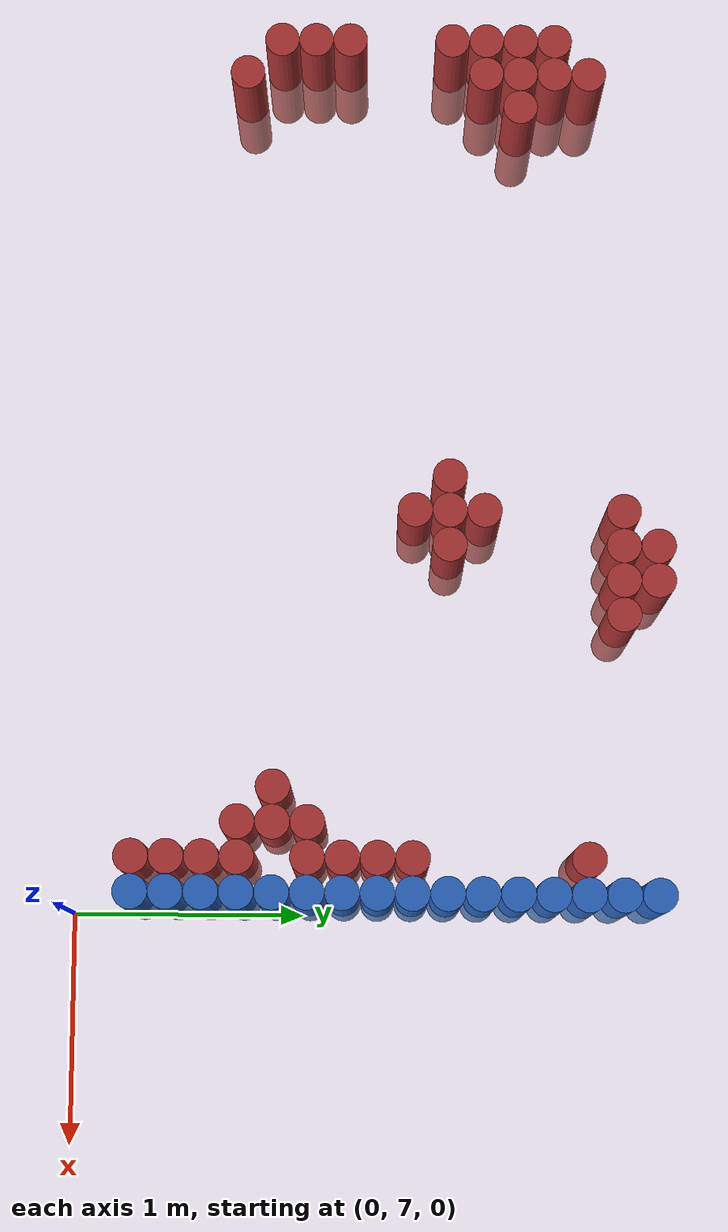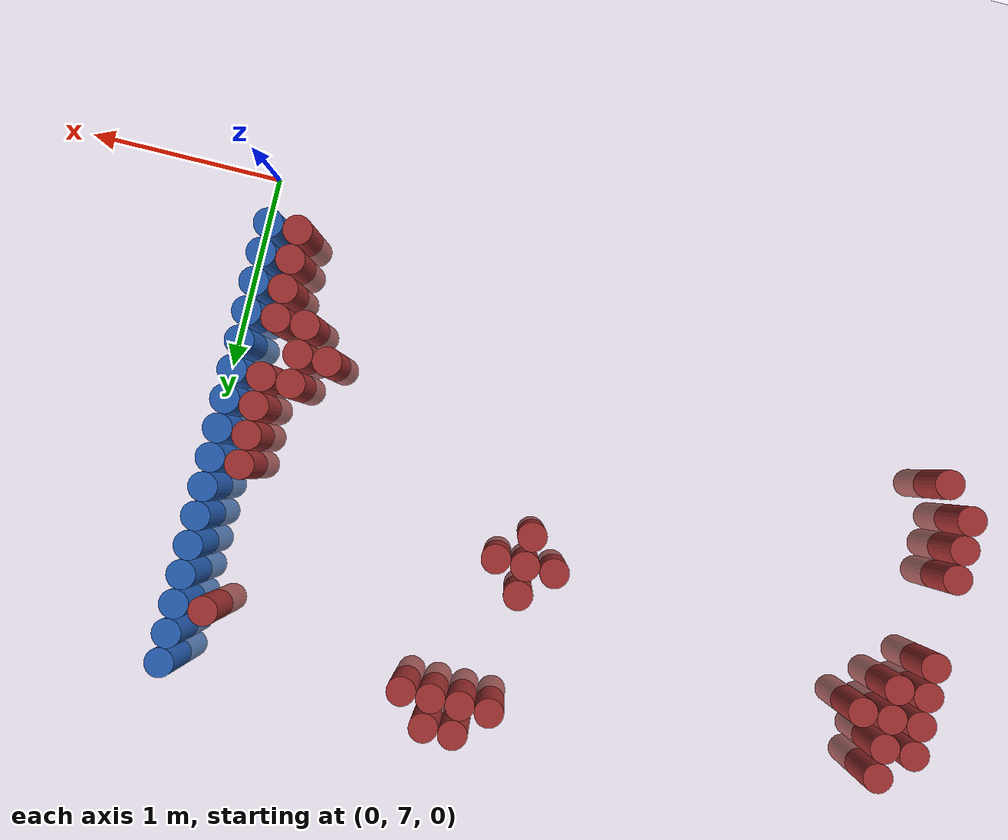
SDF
<sdf version="1.6">
 <world name="default">
  <model name="ground_plane">
   <static>1</static>
   <link name="link">
    <collision name="collision">
     <geometry><plane><normal>0 0 1</normal><size>100 100</size></plane></geometry>
     <surface><friction><ode><mu>100</mu><mu2>50</mu2></ode></friction></surface>
    </collision>
    <visual name="visual">
     <cast_shadows>0</cast_shadows>
     <geometry><plane><normal>0 0 1</normal><size>100 100</size></plane></geometry>
     <material>
      <script><uri>file://media/materials/scripts/gazebo.material</uri><name>Gazebo/Grey</name></script>
     </material>
    </visual>
   </link>
  </model>
  <model name="unit_cylinder_151">
   <static>1</static>
   <pose>-3.825000 7.875000 0.000000 0.000000 0.000000 0.000000</pose>
   <link name="link">
    <inertial>
     <mass>1</mass>
     <inertia><ixx>0.145833</ixx><ixy>0</ixy><ixz>0</ixz><iyy>0.145833</iyy><iyz>0</iyz><izz>0.125</izz></inertia>
    </inertial>
    <collision name="collision">
     <geometry><cylinder><radius>0.075000</radius><length>1</length></cylinder></geometry>
    </collision>
    <visual name="visual">
     <geometry><cylinder><radius>0.075000</radius><length>1</length></cylinder></geometry>
     <material>
      <ambient>0.648000 0.192000 0.192000 1</ambient>
      <diffuse>0.648000 0.192000 0.192000 1</diffuse>
     </material>
     <material>
      <script><name>Gazebo/Grey</name><uri>file://media/materials/scripts/gazebo.material</uri></script>
     </material>
    </visual>
   </link>
  </model>
  <model name="unit_cylinder_152">
   <static>1</static>
   <pose>-3.825000 8.025000 0.000000 0.000000 0.000000 0.000000</pose>
   <link name="link">
    <inertial>
     <mass>1</mass>
     <inertia><ixx>0.145833</ixx><ixy>0</ixy><ixz>0</ixz><iyy>0.145833</iyy><iyz>0</iyz><izz>0.125</izz></inertia>
    </inertial>
    <collision name="collision">
     <geometry><cylinder><radius>0.075000</radius><length>1</length></cylinder></geometry>
    </collision>
    <visual name="visual">
     <geometry><cylinder><radius>0.075000</radius><length>1</length></cylinder></geometry>
     <material>
      <ambient>0.648000 0.192000 0.192000 1</ambient>
      <diffuse>0.648000 0.192000 0.192000 1</diffuse>
     </material>
     <material>
      <script><name>Gazebo/Grey</name><uri>file://media/materials/scripts/gazebo.material</uri></script>
     </material>
    </visual>
   </link>
  </model>
  <model name="unit_cylinder_153">
   <static>1</static>
   <pose>-3.825000 8.175000 0.000000 0.000000 0.000000 0.000000</pose>
   <link name="link">
    <inertial>
     <mass>1</mass>
     <inertia><ixx>0.145833</ixx><ixy>0</ixy><ixz>0</ixz><iyy>0.145833</iyy><iyz>0</iyz><izz>0.125</izz></inertia>
    </inertial>
    <collision name="collision">
     <geometry><cylinder><radius>0.075000</radius><length>1</length></cylinder></geometry>
    </collision>
    <visual name="visual">
     <geometry><cylinder><radius>0.075000</radius><length>1</length></cylinder></geometry>
     <material>
      <ambient>0.648000 0.192000 0.192000 1</ambient>
      <diffuse>0.648000 0.192000 0.192000 1</diffuse>
     </material>
     <material>
      <script><name>Gazebo/Grey</name><uri>file://media/materials/scripts/gazebo.material</uri></script>
     </material>
    </visual>
   </link>
  </model>
  <model name="unit_cylinder_154">
   <static>1</static>
   <pose>-3.825000 8.625000 0.000000 0.000000 0.000000 0.000000</pose>
   <link name="link">
    <inertial>
     <mass>1</mass>
     <inertia><ixx>0.145833</ixx><ixy>0</ixy><ixz>0</ixz><iyy>0.145833</iyy><iyz>0</iyz><izz>0.125</izz></inertia>
    </inertial>
    <collision name="collision">
     <geometry><cylinder><radius>0.075000</radius><length>1</length></cylinder></geometry>
    </collision>
    <visual name="visual">
     <geometry><cylinder><radius>0.075000</radius><length>1</length></cylinder></geometry>
     <material>
      <ambient>0.648000 0.192000 0.192000 1</ambient>
      <diffuse>0.648000 0.192000 0.192000 1</diffuse>
     </material>
     <material>
      <script><name>Gazebo/Grey</name><uri>file://media/materials/scripts/gazebo.material</uri></script>
     </material>
    </visual>
   </link>
  </model>
  <model name="unit_cylinder_155">
   <static>1</static>
   <pose>-3.825000 8.775000 0.000000 0.000000 0.000000 0.000000</pose>
   <link name="link">
    <inertial>
     <mass>1</mass>
     <inertia><ixx>0.145833</ixx><ixy>0</ixy><ixz>0</ixz><iyy>0.145833</iyy><iyz>0</iyz><izz>0.125</izz></inertia>
    </inertial>
    <collision name="collision">
     <geometry><cylinder><radius>0.075000</radius><length>1</length></cylinder></geometry>
    </collision>
    <visual name="visual">
     <geometry><cylinder><radius>0.075000</radius><length>1</length></cylinder></geometry>
     <material>
      <ambient>0.648000 0.192000 0.192000 1</ambient>
      <diffuse>0.648000 0.192000 0.192000 1</diffuse>
     </material>
     <material>
      <script><name>Gazebo/Grey</name><uri>file://media/materials/scripts/gazebo.material</uri></script>
     </material>
    </visual>
   </link>
  </model>
  <model name="unit_cylinder_156">
   <static>1</static>
   <pose>-3.825000 8.925000 0.000000 0.000000 0.000000 0.000000</pose>
   <link name="link">
    <inertial>
     <mass>1</mass>
     <inertia><ixx>0.145833</ixx><ixy>0</ixy><ixz>0</ixz><iyy>0.145833</iyy><iyz>0</iyz><izz>0.125</izz></inertia>
    </inertial>
    <collision name="collision">
     <geometry><cylinder><radius>0.075000</radius><length>1</length></cylinder></geometry>
    </collision>
    <visual name="visual">
     <geometry><cylinder><radius>0.075000</radius><length>1</length></cylinder></geometry>
     <material>
      <ambient>0.648000 0.192000 0.192000 1</ambient>
      <diffuse>0.648000 0.192000 0.192000 1</diffuse>
     </material>
     <material>
      <script><name>Gazebo/Grey</name><uri>file://media/materials/scripts/gazebo.material</uri></script>
     </material>
    </visual>
   </link>
  </model>
  <model name="unit_cylinder_157">
   <static>1</static>
   <pose>-3.825000 9.075000 0.000000 0.000000 0.000000 0.000000</pose>
   <link name="link">
    <inertial>
     <mass>1</mass>
     <inertia><ixx>0.145833</ixx><ixy>0</ixy><ixz>0</ixz><iyy>0.145833</iyy><iyz>0</iyz><izz>0.125</izz></inertia>
    </inertial>
    <collision name="collision">
     <geometry><cylinder><radius>0.075000</radius><length>1</length></cylinder></geometry>
    </collision>
    <visual name="visual">
     <geometry><cylinder><radius>0.075000</radius><length>1</length></cylinder></geometry>
     <material>
      <ambient>0.648000 0.192000 0.192000 1</ambient>
      <diffuse>0.648000 0.192000 0.192000 1</diffuse>
     </material>
     <material>
      <script><name>Gazebo/Grey</name><uri>file://media/materials/scripts/gazebo.material</uri></script>
     </material>
    </visual>
   </link>
  </model>
  <model name="unit_cylinder_158">
   <static>1</static>
   <pose>-3.675000 7.725000 0.000000 0.000000 0.000000 0.000000</pose>
   <link name="link">
    <inertial>
     <mass>1</mass>
     <inertia><ixx>0.145833</ixx><ixy>0</ixy><ixz>0</ixz><iyy>0.145833</iyy><iyz>0</iyz><izz>0.125</izz></inertia>
    </inertial>
    <collision name="collision">
     <geometry><cylinder><radius>0.075000</radius><length>1</length></cylinder></geometry>
    </collision>
    <visual name="visual">
     <geometry><cylinder><radius>0.075000</radius><length>1</length></cylinder></geometry>
     <material>
      <ambient>0.648000 0.192000 0.192000 1</ambient>
      <diffuse>0.648000 0.192000 0.192000 1</diffuse>
     </material>
     <material>
      <script><name>Gazebo/Grey</name><uri>file://media/materials/scripts/gazebo.material</uri></script>
     </material>
    </visual>
   </link>
  </model>
  <model name="unit_cylinder_159">
   <static>1</static>
   <pose>-3.675000 8.775000 0.000000 0.000000 0.000000 0.000000</pose>
   <link name="link">
    <inertial>
     <mass>1</mass>
     <inertia><ixx>0.145833</ixx><ixy>0</ixy><ixz>0</ixz><iyy>0.145833</iyy><iyz>0</iyz><izz>0.125</izz></inertia>
    </inertial>
    <collision name="collision">
     <geometry><cylinder><radius>0.075000</radius><length>1</length></cylinder></geometry>
    </collision>
    <visual name="visual">
     <geometry><cylinder><radius>0.075000</radius><length>1</length></cylinder></geometry>
     <material>
      <ambient>0.648000 0.192000 0.192000 1</ambient>
      <diffuse>0.648000 0.192000 0.192000 1</diffuse>
     </material>
     <material>
      <script><name>Gazebo/Grey</name><uri>file://media/materials/scripts/gazebo.material</uri></script>
     </material>
    </visual>
   </link>
  </model>
  <model name="unit_cylinder_160">
   <static>1</static>
   <pose>-3.675000 8.925000 0.000000 0.000000 0.000000 0.000000</pose>
   <link name="link">
    <inertial>
     <mass>1</mass>
     <inertia><ixx>0.145833</ixx><ixy>0</ixy><ixz>0</ixz><iyy>0.145833</iyy><iyz>0</iyz><izz>0.125</izz></inertia>
    </inertial>
    <collision name="collision">
     <geometry><cylinder><radius>0.075000</radius><length>1</length></cylinder></geometry>
    </collision>
    <visual name="visual">
     <geometry><cylinder><radius>0.075000</radius><length>1</length></cylinder></geometry>
     <material>
      <ambient>0.648000 0.192000 0.192000 1</ambient>
      <diffuse>0.648000 0.192000 0.192000 1</diffuse>
     </material>
     <material>
      <script><name>Gazebo/Grey</name><uri>file://media/materials/scripts/gazebo.material</uri></script>
     </material>
    </visual>
   </link>
  </model>
  <model name="unit_cylinder_161">
   <static>1</static>
   <pose>-3.675000 9.075000 0.000000 0.000000 0.000000 0.000000</pose>
   <link name="link">
    <inertial>
     <mass>1</mass>
     <inertia><ixx>0.145833</ixx><ixy>0</ixy><ixz>0</ixz><iyy>0.145833</iyy><iyz>0</iyz><izz>0.125</izz></inertia>
    </inertial>
    <collision name="collision">
     <geometry><cylinder><radius>0.075000</radius><length>1</length></cylinder></geometry>
    </collision>
    <visual name="visual">
     <geometry><cylinder><radius>0.075000</radius><length>1</length></cylinder></geometry>
     <material>
      <ambient>0.648000 0.192000 0.192000 1</ambient>
      <diffuse>0.648000 0.192000 0.192000 1</diffuse>
     </material>
     <material>
      <script><name>Gazebo/Grey</name><uri>file://media/materials/scripts/gazebo.material</uri></script>
     </material>
    </visual>
   </link>
  </model>
  <model name="unit_cylinder_162">
   <static>1</static>
   <pose>-3.675000 9.225000 0.000000 0.000000 0.000000 0.000000</pose>
   <link name="link">
    <inertial>
     <mass>1</mass>
     <inertia><ixx>0.145833</ixx><ixy>0</ixy><ixz>0</ixz><iyy>0.145833</iyy><iyz>0</iyz><izz>0.125</izz></inertia>
    </inertial>
    <collision name="collision">
     <geometry><cylinder><radius>0.075000</radius><length>1</length></cylinder></geometry>
    </collision>
    <visual name="visual">
     <geometry><cylinder><radius>0.075000</radius><length>1</length></cylinder></geometry>
     <material>
      <ambient>0.648000 0.192000 0.192000 1</ambient>
      <diffuse>0.648000 0.192000 0.192000 1</diffuse>
     </material>
     <material>
      <script><name>Gazebo/Grey</name><uri>file://media/materials/scripts/gazebo.material</uri></script>
     </material>
    </visual>
   </link>
  </model>
  <model name="unit_cylinder_163">
   <static>1</static>
   <pose>-3.525000 8.925000 0.000000 0.000000 0.000000 0.000000</pose>
   <link name="link">
    <inertial>
     <mass>1</mass>
     <inertia><ixx>0.145833</ixx><ixy>0</ixy><ixz>0</ixz><iyy>0.145833</iyy><iyz>0</iyz><izz>0.125</izz></inertia>
    </inertial>
    <collision name="collision">
     <geometry><cylinder><radius>0.075000</radius><length>1</length></cylinder></geometry>
    </collision>
    <visual name="visual">
     <geometry><cylinder><radius>0.075000</radius><length>1</length></cylinder></geometry>
     <material>
      <ambient>0.648000 0.192000 0.192000 1</ambient>
      <diffuse>0.648000 0.192000 0.192000 1</diffuse>
     </material>
     <material>
      <script><name>Gazebo/Grey</name><uri>file://media/materials/scripts/gazebo.material</uri></script>
     </material>
    </visual>
   </link>
  </model>
  <model name="unit_cylinder_183">
   <static>1</static>
   <pose>-1.875000 8.625000 0.000000 0.000000 0.000000 0.000000</pose>
   <link name="link">
    <inertial>
     <mass>1</mass>
     <inertia><ixx>0.145833</ixx><ixy>0</ixy><ixz>0</ixz><iyy>0.145833</iyy><iyz>0</iyz><izz>0.125</izz></inertia>
    </inertial>
    <collision name="collision">
     <geometry><cylinder><radius>0.075000</radius><length>1</length></cylinder></geometry>
    </collision>
    <visual name="visual">
     <geometry><cylinder><radius>0.075000</radius><length>1</length></cylinder></geometry>
     <material>
      <ambient>0.648000 0.192000 0.192000 1</ambient>
      <diffuse>0.648000 0.192000 0.192000 1</diffuse>
     </material>
     <material>
      <script><name>Gazebo/Grey</name><uri>file://media/materials/scripts/gazebo.material</uri></script>
     </material>
    </visual>
   </link>
  </model>
  <model name="unit_cylinder_185">
   <static>1</static>
   <pose>-1.725000 8.475000 0.000000 0.000000 0.000000 0.000000</pose>
   <link name="link">
    <inertial>
     <mass>1</mass>
     <inertia><ixx>0.145833</ixx><ixy>0</ixy><ixz>0</ixz><iyy>0.145833</iyy><iyz>0</iyz><izz>0.125</izz></inertia>
    </inertial>
    <collision name="collision">
     <geometry><cylinder><radius>0.075000</radius><length>1</length></cylinder></geometry>
    </collision>
    <visual name="visual">
     <geometry><cylinder><radius>0.075000</radius><length>1</length></cylinder></geometry>
     <material>
      <ambient>0.648000 0.192000 0.192000 1</ambient>
      <diffuse>0.648000 0.192000 0.192000 1</diffuse>
     </material>
     <material>
      <script><name>Gazebo/Grey</name><uri>file://media/materials/scripts/gazebo.material</uri></script>
     </material>
    </visual>
   </link>
  </model>
  <model name="unit_cylinder_186">
   <static>1</static>
   <pose>-1.725000 8.625000 0.000000 0.000000 0.000000 0.000000</pose>
   <link name="link">
    <inertial>
     <mass>1</mass>
     <inertia><ixx>0.145833</ixx><ixy>0</ixy><ixz>0</ixz><iyy>0.145833</iyy><iyz>0</iyz><izz>0.125</izz></inertia>
    </inertial>
    <collision name="collision">
     <geometry><cylinder><radius>0.075000</radius><length>1</length></cylinder></geometry>
    </collision>
    <visual name="visual">
     <geometry><cylinder><radius>0.075000</radius><length>1</length></cylinder></geometry>
     <material>
      <ambient>0.648000 0.192000 0.192000 1</ambient>
      <diffuse>0.648000 0.192000 0.192000 1</diffuse>
     </material>
     <material>
      <script><name>Gazebo/Grey</name><uri>file://media/materials/scripts/gazebo.material</uri></script>
     </material>
    </visual>
   </link>
  </model>
  <model name="unit_cylinder_187">
   <static>1</static>
   <pose>-1.725000 8.775000 0.000000 0.000000 0.000000 0.000000</pose>
   <link name="link">
    <inertial>
     <mass>1</mass>
     <inertia><ixx>0.145833</ixx><ixy>0</ixy><ixz>0</ixz><iyy>0.145833</iyy><iyz>0</iyz><izz>0.125</izz></inertia>
    </inertial>
    <collision name="collision">
     <geometry><cylinder><radius>0.075000</radius><length>1</length></cylinder></geometry>
    </collision>
    <visual name="visual">
     <geometry><cylinder><radius>0.075000</radius><length>1</length></cylinder></geometry>
     <material>
      <ambient>0.648000 0.192000 0.192000 1</ambient>
      <diffuse>0.648000 0.192000 0.192000 1</diffuse>
     </material>
     <material>
      <script><name>Gazebo/Grey</name><uri>file://media/materials/scripts/gazebo.material</uri></script>
     </material>
    </visual>
   </link>
  </model>
  <model name="unit_cylinder_188">
   <static>1</static>
   <pose>-1.725000 9.375000 0.000000 0.000000 0.000000 0.000000</pose>
   <link name="link">
    <inertial>
     <mass>1</mass>
     <inertia><ixx>0.145833</ixx><ixy>0</ixy><ixz>0</ixz><iyy>0.145833</iyy><iyz>0</iyz><izz>0.125</izz></inertia>
    </inertial>
    <collision name="collision">
     <geometry><cylinder><radius>0.075000</radius><length>1</length></cylinder></geometry>
    </collision>
    <visual name="visual">
     <geometry><cylinder><radius>0.075000</radius><length>1</length></cylinder></geometry>
     <material>
      <ambient>0.648000 0.192000 0.192000 1</ambient>
      <diffuse>0.648000 0.192000 0.192000 1</diffuse>
     </material>
     <material>
      <script><name>Gazebo/Grey</name><uri>file://media/materials/scripts/gazebo.material</uri></script>
     </material>
    </visual>
   </link>
  </model>
  <model name="unit_cylinder_190">
   <static>1</static>
   <pose>-1.575000 8.625000 0.000000 0.000000 0.000000 0.000000</pose>
   <link name="link">
    <inertial>
     <mass>1</mass>
     <inertia><ixx>0.145833</ixx><ixy>0</ixy><ixz>0</ixz><iyy>0.145833</iyy><iyz>0</iyz><izz>0.125</izz></inertia>
    </inertial>
    <collision name="collision">
     <geometry><cylinder><radius>0.075000</radius><length>1</length></cylinder></geometry>
    </collision>
    <visual name="visual">
     <geometry><cylinder><radius>0.075000</radius><length>1</length></cylinder></geometry>
     <material>
      <ambient>0.648000 0.192000 0.192000 1</ambient>
      <diffuse>0.648000 0.192000 0.192000 1</diffuse>
     </material>
     <material>
      <script><name>Gazebo/Grey</name><uri>file://media/materials/scripts/gazebo.material</uri></script>
     </material>
    </visual>
   </link>
  </model>
  <model name="unit_cylinder_191">
   <static>1</static>
   <pose>-1.575000 9.375000 0.000000 0.000000 0.000000 0.000000</pose>
   <link name="link">
    <inertial>
     <mass>1</mass>
     <inertia><ixx>0.145833</ixx><ixy>0</ixy><ixz>0</ixz><iyy>0.145833</iyy><iyz>0</iyz><izz>0.125</izz></inertia>
    </inertial>
    <collision name="collision">
     <geometry><cylinder><radius>0.075000</radius><length>1</length></cylinder></geometry>
    </collision>
    <visual name="visual">
     <geometry><cylinder><radius>0.075000</radius><length>1</length></cylinder></geometry>
     <material>
      <ambient>0.648000 0.192000 0.192000 1</ambient>
      <diffuse>0.648000 0.192000 0.192000 1</diffuse>
     </material>
     <material>
      <script><name>Gazebo/Grey</name><uri>file://media/materials/scripts/gazebo.material</uri></script>
     </material>
    </visual>
   </link>
  </model>
  <model name="unit_cylinder_192">
   <static>1</static>
   <pose>-1.575000 9.525000 0.000000 0.000000 0.000000 0.000000</pose>
   <link name="link">
    <inertial>
     <mass>1</mass>
     <inertia><ixx>0.145833</ixx><ixy>0</ixy><ixz>0</ixz><iyy>0.145833</iyy><iyz>0</iyz><izz>0.125</izz></inertia>
    </inertial>
    <collision name="collision">
     <geometry><cylinder><radius>0.075000</radius><length>1</length></cylinder></geometry>
    </collision>
    <visual name="visual">
     <geometry><cylinder><radius>0.075000</radius><length>1</length></cylinder></geometry>
     <material>
      <ambient>0.648000 0.192000 0.192000 1</ambient>
      <diffuse>0.648000 0.192000 0.192000 1</diffuse>
     </material>
     <material>
      <script><name>Gazebo/Grey</name><uri>file://media/materials/scripts/gazebo.material</uri></script>
     </material>
    </visual>
   </link>
  </model>
  <model name="unit_cylinder_196">
   <static>1</static>
   <pose>-1.425000 9.375000 0.000000 0.000000 0.000000 0.000000</pose>
   <link name="link">
    <inertial>
     <mass>1</mass>
     <inertia><ixx>0.145833</ixx><ixy>0</ixy><ixz>0</ixz><iyy>0.145833</iyy><iyz>0</iyz><izz>0.125</izz></inertia>
    </inertial>
    <collision name="collision">
     <geometry><cylinder><radius>0.075000</radius><length>1</length></cylinder></geometry>
    </collision>
    <visual name="visual">
     <geometry><cylinder><radius>0.075000</radius><length>1</length></cylinder></geometry>
     <material>
      <ambient>0.648000 0.192000 0.192000 1</ambient>
      <diffuse>0.648000 0.192000 0.192000 1</diffuse>
     </material>
     <material>
      <script><name>Gazebo/Grey</name><uri>file://media/materials/scripts/gazebo.material</uri></script>
     </material>
    </visual>
   </link>
  </model>
  <model name="unit_cylinder_197">
   <static>1</static>
   <pose>-1.425000 9.525000 0.000000 0.000000 0.000000 0.000000</pose>
   <link name="link">
    <inertial>
     <mass>1</mass>
     <inertia><ixx>0.145833</ixx><ixy>0</ixy><ixz>0</ixz><iyy>0.145833</iyy><iyz>0</iyz><izz>0.125</izz></inertia>
    </inertial>
    <collision name="collision">
     <geometry><cylinder><radius>0.075000</radius><length>1</length></cylinder></geometry>
    </collision>
    <visual name="visual">
     <geometry><cylinder><radius>0.075000</radius><length>1</length></cylinder></geometry>
     <material>
      <ambient>0.648000 0.192000 0.192000 1</ambient>
      <diffuse>0.648000 0.192000 0.192000 1</diffuse>
     </material>
     <material>
      <script><name>Gazebo/Grey</name><uri>file://media/materials/scripts/gazebo.material</uri></script>
     </material>
    </visual>
   </link>
  </model>
  <model name="unit_cylinder_203">
   <static>1</static>
   <pose>-1.275000 9.375000 0.000000 0.000000 0.000000 0.000000</pose>
   <link name="link">
    <inertial>
     <mass>1</mass>
     <inertia><ixx>0.145833</ixx><ixy>0</ixy><ixz>0</ixz><iyy>0.145833</iyy><iyz>0</iyz><izz>0.125</izz></inertia>
    </inertial>
    <collision name="collision">
     <geometry><cylinder><radius>0.075000</radius><length>1</length></cylinder></geometry>
    </collision>
    <visual name="visual">
     <geometry><cylinder><radius>0.075000</radius><length>1</length></cylinder></geometry>
     <material>
      <ambient>0.648000 0.192000 0.192000 1</ambient>
      <diffuse>0.648000 0.192000 0.192000 1</diffuse>
     </material>
     <material>
      <script><name>Gazebo/Grey</name><uri>file://media/materials/scripts/gazebo.material</uri></script>
     </material>
    </visual>
   </link>
  </model>
  <model name="unit_cylinder_215">
   <static>1</static>
   <pose>-0.525000 7.875000 0.000000 0.000000 0.000000 0.000000</pose>
   <link name="link">
    <inertial>
     <mass>1</mass>
     <inertia><ixx>0.145833</ixx><ixy>0</ixy><ixz>0</ixz><iyy>0.145833</iyy><iyz>0</iyz><izz>0.125</izz></inertia>
    </inertial>
    <collision name="collision">
     <geometry><cylinder><radius>0.075000</radius><length>1</length></cylinder></geometry>
    </collision>
    <visual name="visual">
     <geometry><cylinder><radius>0.075000</radius><length>1</length></cylinder></geometry>
     <material>
      <ambient>0.648000 0.192000 0.192000 1</ambient>
      <diffuse>0.648000 0.192000 0.192000 1</diffuse>
     </material>
     <material>
      <script><name>Gazebo/Grey</name><uri>file://media/materials/scripts/gazebo.material</uri></script>
     </material>
    </visual>
   </link>
  </model>
  <model name="unit_cylinder_217">
   <static>1</static>
   <pose>-0.375000 7.725000 0.000000 0.000000 0.000000 0.000000</pose>
   <link name="link">
    <inertial>
     <mass>1</mass>
     <inertia><ixx>0.145833</ixx><ixy>0</ixy><ixz>0</ixz><iyy>0.145833</iyy><iyz>0</iyz><izz>0.125</izz></inertia>
    </inertial>
    <collision name="collision">
     <geometry><cylinder><radius>0.075000</radius><length>1</length></cylinder></geometry>
    </collision>
    <visual name="visual">
     <geometry><cylinder><radius>0.075000</radius><length>1</length></cylinder></geometry>
     <material>
      <ambient>0.648000 0.192000 0.192000 1</ambient>
      <diffuse>0.648000 0.192000 0.192000 1</diffuse>
     </material>
     <material>
      <script><name>Gazebo/Grey</name><uri>file://media/materials/scripts/gazebo.material</uri></script>
     </material>
    </visual>
   </link>
  </model>
  <model name="unit_cylinder_218">
   <static>1</static>
   <pose>-0.375000 7.875000 0.000000 0.000000 0.000000 0.000000</pose>
   <link name="link">
    <inertial>
     <mass>1</mass>
     <inertia><ixx>0.145833</ixx><ixy>0</ixy><ixz>0</ixz><iyy>0.145833</iyy><iyz>0</iyz><izz>0.125</izz></inertia>
    </inertial>
    <collision name="collision">
     <geometry><cylinder><radius>0.075000</radius><length>1</length></cylinder></geometry>
    </collision>
    <visual name="visual">
     <geometry><cylinder><radius>0.075000</radius><length>1</length></cylinder></geometry>
     <material>
      <ambient>0.648000 0.192000 0.192000 1</ambient>
      <diffuse>0.648000 0.192000 0.192000 1</diffuse>
     </material>
     <material>
      <script><name>Gazebo/Grey</name><uri>file://media/materials/scripts/gazebo.material</uri></script>
     </material>
    </visual>
   </link>
  </model>
  <model name="unit_cylinder_219">
   <static>1</static>
   <pose>-0.375000 8.025000 0.000000 0.000000 0.000000 0.000000</pose>
   <link name="link">
    <inertial>
     <mass>1</mass>
     <inertia><ixx>0.145833</ixx><ixy>0</ixy><ixz>0</ixz><iyy>0.145833</iyy><iyz>0</iyz><izz>0.125</izz></inertia>
    </inertial>
    <collision name="collision">
     <geometry><cylinder><radius>0.075000</radius><length>1</length></cylinder></geometry>
    </collision>
    <visual name="visual">
     <geometry><cylinder><radius>0.075000</radius><length>1</length></cylinder></geometry>
     <material>
      <ambient>0.648000 0.192000 0.192000 1</ambient>
      <diffuse>0.648000 0.192000 0.192000 1</diffuse>
     </material>
     <material>
      <script><name>Gazebo/Grey</name><uri>file://media/materials/scripts/gazebo.material</uri></script>
     </material>
    </visual>
   </link>
  </model>
  <model name="unit_cylinder_226">
   <static>1</static>
   <pose>-0.225000 7.275000 0.000000 0.000000 0.000000 0.000000</pose>
   <link name="link">
    <inertial>
     <mass>1</mass>
     <inertia><ixx>0.145833</ixx><ixy>0</ixy><ixz>0</ixz><iyy>0.145833</iyy><iyz>0</iyz><izz>0.125</izz></inertia>
    </inertial>
    <collision name="collision">
     <geometry><cylinder><radius>0.075000</radius><length>1</length></cylinder></geometry>
    </collision>
    <visual name="visual">
     <geometry><cylinder><radius>0.075000</radius><length>1</length></cylinder></geometry>
     <material>
      <ambient>0.648000 0.192000 0.192000 1</ambient>
      <diffuse>0.648000 0.192000 0.192000 1</diffuse>
     </material>
     <material>
      <script><name>Gazebo/Grey</name><uri>file://media/materials/scripts/gazebo.material</uri></script>
     </material>
    </visual>
   </link>
  </model>
  <model name="unit_cylinder_227">
   <static>1</static>
   <pose>-0.225000 7.425000 0.000000 0.000000 0.000000 0.000000</pose>
   <link name="link">
    <inertial>
     <mass>1</mass>
     <inertia><ixx>0.145833</ixx><ixy>0</ixy><ixz>0</ixz><iyy>0.145833</iyy><iyz>0</iyz><izz>0.125</izz></inertia>
    </inertial>
    <collision name="collision">
     <geometry><cylinder><radius>0.075000</radius><length>1</length></cylinder></geometry>
    </collision>
    <visual name="visual">
     <geometry><cylinder><radius>0.075000</radius><length>1</length></cylinder></geometry>
     <material>
      <ambient>0.648000 0.192000 0.192000 1</ambient>
      <diffuse>0.648000 0.192000 0.192000 1</diffuse>
     </material>
     <material>
      <script><name>Gazebo/Grey</name><uri>file://media/materials/scripts/gazebo.material</uri></script>
     </material>
    </visual>
   </link>
  </model>
  <model name="unit_cylinder_228">
   <static>1</static>
   <pose>-0.225000 7.575000 0.000000 0.000000 0.000000 0.000000</pose>
   <link name="link">
    <inertial>
     <mass>1</mass>
     <inertia><ixx>0.145833</ixx><ixy>0</ixy><ixz>0</ixz><iyy>0.145833</iyy><iyz>0</iyz><izz>0.125</izz></inertia>
    </inertial>
    <collision name="collision">
     <geometry><cylinder><radius>0.075000</radius><length>1</length></cylinder></geometry>
    </collision>
    <visual name="visual">
     <geometry><cylinder><radius>0.075000</radius><length>1</length></cylinder></geometry>
     <material>
      <ambient>0.648000 0.192000 0.192000 1</ambient>
      <diffuse>0.648000 0.192000 0.192000 1</diffuse>
     </material>
     <material>
      <script><name>Gazebo/Grey</name><uri>file://media/materials/scripts/gazebo.material</uri></script>
     </material>
    </visual>
   </link>
  </model>
  <model name="unit_cylinder_229">
   <static>1</static>
   <pose>-0.225000 7.725000 0.000000 0.000000 0.000000 0.000000</pose>
   <link name="link">
    <inertial>
     <mass>1</mass>
     <inertia><ixx>0.145833</ixx><ixy>0</ixy><ixz>0</ixz><iyy>0.145833</iyy><iyz>0</iyz><izz>0.125</izz></inertia>
    </inertial>
    <collision name="collision">
     <geometry><cylinder><radius>0.075000</radius><length>1</length></cylinder></geometry>
    </collision>
    <visual name="visual">
     <geometry><cylinder><radius>0.075000</radius><length>1</length></cylinder></geometry>
     <material>
      <ambient>0.648000 0.192000 0.192000 1</ambient>
      <diffuse>0.648000 0.192000 0.192000 1</diffuse>
     </material>
     <material>
      <script><name>Gazebo/Grey</name><uri>file://media/materials/scripts/gazebo.material</uri></script>
     </material>
    </visual>
   </link>
  </model>
  <model name="unit_cylinder_230">
   <static>1</static>
   <pose>-0.225000 8.025000 0.000000 0.000000 0.000000 0.000000</pose>
   <link name="link">
    <inertial>
     <mass>1</mass>
     <inertia><ixx>0.145833</ixx><ixy>0</ixy><ixz>0</ixz><iyy>0.145833</iyy><iyz>0</iyz><izz>0.125</izz></inertia>
    </inertial>
    <collision name="collision">
     <geometry><cylinder><radius>0.075000</radius><length>1</length></cylinder></geometry>
    </collision>
    <visual name="visual">
     <geometry><cylinder><radius>0.075000</radius><length>1</length></cylinder></geometry>
     <material>
      <ambient>0.648000 0.192000 0.192000 1</ambient>
      <diffuse>0.648000 0.192000 0.192000 1</diffuse>
     </material>
     <material>
      <script><name>Gazebo/Grey</name><uri>file://media/materials/scripts/gazebo.material</uri></script>
     </material>
    </visual>
   </link>
  </model>
  <model name="unit_cylinder_231">
   <static>1</static>
   <pose>-0.225000 8.175000 0.000000 0.000000 0.000000 0.000000</pose>
   <link name="link">
    <inertial>
     <mass>1</mass>
     <inertia><ixx>0.145833</ixx><ixy>0</ixy><ixz>0</ixz><iyy>0.145833</iyy><iyz>0</iyz><izz>0.125</izz></inertia>
    </inertial>
    <collision name="collision">
     <geometry><cylinder><radius>0.075000</radius><length>1</length></cylinder></geometry>
    </collision>
    <visual name="visual">
     <geometry><cylinder><radius>0.075000</radius><length>1</length></cylinder></geometry>
     <material>
      <ambient>0.648000 0.192000 0.192000 1</ambient>
      <diffuse>0.648000 0.192000 0.192000 1</diffuse>
     </material>
     <material>
      <script><name>Gazebo/Grey</name><uri>file://media/materials/scripts/gazebo.material</uri></script>
     </material>
    </visual>
   </link>
  </model>
  <model name="unit_cylinder_232">
   <static>1</static>
   <pose>-0.225000 8.325000 0.000000 0.000000 0.000000 0.000000</pose>
   <link name="link">
    <inertial>
     <mass>1</mass>
     <inertia><ixx>0.145833</ixx><ixy>0</ixy><ixz>0</ixz><iyy>0.145833</iyy><iyz>0</iyz><izz>0.125</izz></inertia>
    </inertial>
    <collision name="collision">
     <geometry><cylinder><radius>0.075000</radius><length>1</length></cylinder></geometry>
    </collision>
    <visual name="visual">
     <geometry><cylinder><radius>0.075000</radius><length>1</length></cylinder></geometry>
     <material>
      <ambient>0.648000 0.192000 0.192000 1</ambient>
      <diffuse>0.648000 0.192000 0.192000 1</diffuse>
     </material>
     <material>
      <script><name>Gazebo/Grey</name><uri>file://media/materials/scripts/gazebo.material</uri></script>
     </material>
    </visual>
   </link>
  </model>
  <model name="unit_cylinder_233">
   <static>1</static>
   <pose>-0.225000 8.475000 0.000000 0.000000 0.000000 0.000000</pose>
   <link name="link">
    <inertial>
     <mass>1</mass>
     <inertia><ixx>0.145833</ixx><ixy>0</ixy><ixz>0</ixz><iyy>0.145833</iyy><iyz>0</iyz><izz>0.125</izz></inertia>
    </inertial>
    <collision name="collision">
     <geometry><cylinder><radius>0.075000</radius><length>1</length></cylinder></geometry>
    </collision>
    <visual name="visual">
     <geometry><cylinder><radius>0.075000</radius><length>1</length></cylinder></geometry>
     <material>
      <ambient>0.648000 0.192000 0.192000 1</ambient>
      <diffuse>0.648000 0.192000 0.192000 1</diffuse>
     </material>
     <material>
      <script><name>Gazebo/Grey</name><uri>file://media/materials/scripts/gazebo.material</uri></script>
     </material>
    </visual>
   </link>
  </model>
  <model name="unit_cylinder_234">
   <static>1</static>
   <pose>-0.225000 9.225000 0.000000 0.000000 0.000000 0.000000</pose>
   <link name="link">
    <inertial>
     <mass>1</mass>
     <inertia><ixx>0.145833</ixx><ixy>0</ixy><ixz>0</ixz><iyy>0.145833</iyy><iyz>0</iyz><izz>0.125</izz></inertia>
    </inertial>
    <collision name="collision">
     <geometry><cylinder><radius>0.075000</radius><length>1</length></cylinder></geometry>
    </collision>
    <visual name="visual">
     <geometry><cylinder><radius>0.075000</radius><length>1</length></cylinder></geometry>
     <material>
      <ambient>0.648000 0.192000 0.192000 1</ambient>
      <diffuse>0.648000 0.192000 0.192000 1</diffuse>
     </material>
     <material>
      <script><name>Gazebo/Grey</name><uri>file://media/materials/scripts/gazebo.material</uri></script>
     </material>
    </visual>
   </link>
  </model>
  <model name="unit_cylinder_249">
   <static>1</static>
   <pose>-0.075000 7.275000 0.000000 0.000000 0.000000 0.000000</pose>
   <link name="link">
    <inertial>
     <mass>1</mass>
     <inertia><ixx>0.145833</ixx><ixy>0</ixy><ixz>0</ixz><iyy>0.145833</iyy><iyz>0</iyz><izz>0.125</izz></inertia>
    </inertial>
    <collision name="collision">
     <geometry><cylinder><radius>0.075000</radius><length>1</length></cylinder></geometry>
    </collision>
    <visual name="visual">
     <geometry><cylinder><radius>0.075000</radius><length>1</length></cylinder></geometry>
     <material>
      <ambient>0.152000 0.379000 0.720000 1</ambient>
      <diffuse>0.152000 0.379000 0.720000 1</diffuse>
     </material>
     <material>
      <script><name>Gazebo/Grey</name><uri>file://media/materials/scripts/gazebo.material</uri></script>
     </material>
    </visual>
   </link>
  </model>
  <model name="unit_cylinder_250">
   <static>1</static>
   <pose>-0.075000 7.425000 0.000000 0.000000 0.000000 0.000000</pose>
   <link name="link">
    <inertial>
     <mass>1</mass>
     <inertia><ixx>0.145833</ixx><ixy>0</ixy><ixz>0</ixz><iyy>0.145833</iyy><iyz>0</iyz><izz>0.125</izz></inertia>
    </inertial>
    <collision name="collision">
     <geometry><cylinder><radius>0.075000</radius><length>1</length></cylinder></geometry>
    </collision>
    <visual name="visual">
     <geometry><cylinder><radius>0.075000</radius><length>1</length></cylinder></geometry>
     <material>
      <ambient>0.152000 0.379000 0.720000 1</ambient>
      <diffuse>0.152000 0.379000 0.720000 1</diffuse>
     </material>
     <material>
      <script><name>Gazebo/Grey</name><uri>file://media/materials/scripts/gazebo.material</uri></script>
     </material>
    </visual>
   </link>
  </model>
  <model name="unit_cylinder_251">
   <static>1</static>
   <pose>-0.075000 7.575000 0.000000 0.000000 0.000000 0.000000</pose>
   <link name="link">
    <inertial>
     <mass>1</mass>
     <inertia><ixx>0.145833</ixx><ixy>0</ixy><ixz>0</ixz><iyy>0.145833</iyy><iyz>0</iyz><izz>0.125</izz></inertia>
    </inertial>
    <collision name="collision">
     <geometry><cylinder><radius>0.075000</radius><length>1</length></cylinder></geometry>
    </collision>
    <visual name="visual">
     <geometry><cylinder><radius>0.075000</radius><length>1</length></cylinder></geometry>
     <material>
      <ambient>0.152000 0.379000 0.720000 1</ambient>
      <diffuse>0.152000 0.379000 0.720000 1</diffuse>
     </material>
     <material>
      <script><name>Gazebo/Grey</name><uri>file://media/materials/scripts/gazebo.material</uri></script>
     </material>
    </visual>
   </link>
  </model>
  <model name="unit_cylinder_252">
   <static>1</static>
   <pose>-0.075000 7.725000 0.000000 0.000000 0.000000 0.000000</pose>
   <link name="link">
    <inertial>
     <mass>1</mass>
     <inertia><ixx>0.145833</ixx><ixy>0</ixy><ixz>0</ixz><iyy>0.145833</iyy><iyz>0</iyz><izz>0.125</izz></inertia>
    </inertial>
    <collision name="collision">
     <geometry><cylinder><radius>0.075000</radius><length>1</length></cylinder></geometry>
    </collision>
    <visual name="visual">
     <geometry><cylinder><radius>0.075000</radius><length>1</length></cylinder></geometry>
     <material>
      <ambient>0.152000 0.379000 0.720000 1</ambient>
      <diffuse>0.152000 0.379000 0.720000 1</diffuse>
     </material>
     <material>
      <script><name>Gazebo/Grey</name><uri>file://media/materials/scripts/gazebo.material</uri></script>
     </material>
    </visual>
   </link>
  </model>
  <model name="unit_cylinder_253">
   <static>1</static>
   <pose>-0.075000 7.875000 0.000000 0.000000 0.000000 0.000000</pose>
   <link name="link">
    <inertial>
     <mass>1</mass>
     <inertia><ixx>0.145833</ixx><ixy>0</ixy><ixz>0</ixz><iyy>0.145833</iyy><iyz>0</iyz><izz>0.125</izz></inertia>
    </inertial>
    <collision name="collision">
     <geometry><cylinder><radius>0.075000</radius><length>1</length></cylinder></geometry>
    </collision>
    <visual name="visual">
     <geometry><cylinder><radius>0.075000</radius><length>1</length></cylinder></geometry>
     <material>
      <ambient>0.152000 0.379000 0.720000 1</ambient>
      <diffuse>0.152000 0.379000 0.720000 1</diffuse>
     </material>
     <material>
      <script><name>Gazebo/Grey</name><uri>file://media/materials/scripts/gazebo.material</uri></script>
     </material>
    </visual>
   </link>
  </model>
  <model name="unit_cylinder_254">
   <static>1</static>
   <pose>-0.075000 8.025000 0.000000 0.000000 0.000000 0.000000</pose>
   <link name="link">
    <inertial>
     <mass>1</mass>
     <inertia><ixx>0.145833</ixx><ixy>0</ixy><ixz>0</ixz><iyy>0.145833</iyy><iyz>0</iyz><izz>0.125</izz></inertia>
    </inertial>
    <collision name="collision">
     <geometry><cylinder><radius>0.075000</radius><length>1</length></cylinder></geometry>
    </collision>
    <visual name="visual">
     <geometry><cylinder><radius>0.075000</radius><length>1</length></cylinder></geometry>
     <material>
      <ambient>0.152000 0.379000 0.720000 1</ambient>
      <diffuse>0.152000 0.379000 0.720000 1</diffuse>
     </material>
     <material>
      <script><name>Gazebo/Grey</name><uri>file://media/materials/scripts/gazebo.material</uri></script>
     </material>
    </visual>
   </link>
  </model>
  <model name="unit_cylinder_255">
   <static>1</static>
   <pose>-0.075000 8.175000 0.000000 0.000000 0.000000 0.000000</pose>
   <link name="link">
    <inertial>
     <mass>1</mass>
     <inertia><ixx>0.145833</ixx><ixy>0</ixy><ixz>0</ixz><iyy>0.145833</iyy><iyz>0</iyz><izz>0.125</izz></inertia>
    </inertial>
    <collision name="collision">
     <geometry><cylinder><radius>0.075000</radius><length>1</length></cylinder></geometry>
    </collision>
    <visual name="visual">
     <geometry><cylinder><radius>0.075000</radius><length>1</length></cylinder></geometry>
     <material>
      <ambient>0.152000 0.379000 0.720000 1</ambient>
      <diffuse>0.152000 0.379000 0.720000 1</diffuse>
     </material>
     <material>
      <script><name>Gazebo/Grey</name><uri>file://media/materials/scripts/gazebo.material</uri></script>
     </material>
    </visual>
   </link>
  </model>
  <model name="unit_cylinder_256">
   <static>1</static>
   <pose>-0.075000 8.325000 0.000000 0.000000 0.000000 0.000000</pose>
   <link name="link">
    <inertial>
     <mass>1</mass>
     <inertia><ixx>0.145833</ixx><ixy>0</ixy><ixz>0</ixz><iyy>0.145833</iyy><iyz>0</iyz><izz>0.125</izz></inertia>
    </inertial>
    <collision name="collision">
     <geometry><cylinder><radius>0.075000</radius><length>1</length></cylinder></geometry>
    </collision>
    <visual name="visual">
     <geometry><cylinder><radius>0.075000</radius><length>1</length></cylinder></geometry>
     <material>
      <ambient>0.152000 0.379000 0.720000 1</ambient>
      <diffuse>0.152000 0.379000 0.720000 1</diffuse>
     </material>
     <material>
      <script><name>Gazebo/Grey</name><uri>file://media/materials/scripts/gazebo.material</uri></script>
     </material>
    </visual>
   </link>
  </model>
  <model name="unit_cylinder_257">
   <static>1</static>
   <pose>-0.075000 8.475000 0.000000 0.000000 0.000000 0.000000</pose>
   <link name="link">
    <inertial>
     <mass>1</mass>
     <inertia><ixx>0.145833</ixx><ixy>0</ixy><ixz>0</ixz><iyy>0.145833</iyy><iyz>0</iyz><izz>0.125</izz></inertia>
    </inertial>
    <collision name="collision">
     <geometry><cylinder><radius>0.075000</radius><length>1</length></cylinder></geometry>
    </collision>
    <visual name="visual">
     <geometry><cylinder><radius>0.075000</radius><length>1</length></cylinder></geometry>
     <material>
      <ambient>0.152000 0.379000 0.720000 1</ambient>
      <diffuse>0.152000 0.379000 0.720000 1</diffuse>
     </material>
     <material>
      <script><name>Gazebo/Grey</name><uri>file://media/materials/scripts/gazebo.material</uri></script>
     </material>
    </visual>
   </link>
  </model>
  <model name="unit_cylinder_258">
   <static>1</static>
   <pose>-0.075000 8.625000 0.000000 0.000000 0.000000 0.000000</pose>
   <link name="link">
    <inertial>
     <mass>1</mass>
     <inertia><ixx>0.145833</ixx><ixy>0</ixy><ixz>0</ixz><iyy>0.145833</iyy><iyz>0</iyz><izz>0.125</izz></inertia>
    </inertial>
    <collision name="collision">
     <geometry><cylinder><radius>0.075000</radius><length>1</length></cylinder></geometry>
    </collision>
    <visual name="visual">
     <geometry><cylinder><radius>0.075000</radius><length>1</length></cylinder></geometry>
     <material>
      <ambient>0.152000 0.379000 0.720000 1</ambient>
      <diffuse>0.152000 0.379000 0.720000 1</diffuse>
     </material>
     <material>
      <script><name>Gazebo/Grey</name><uri>file://media/materials/scripts/gazebo.material</uri></script>
     </material>
    </visual>
   </link>
  </model>
  <model name="unit_cylinder_259">
   <static>1</static>
   <pose>-0.075000 8.775000 0.000000 0.000000 0.000000 0.000000</pose>
   <link name="link">
    <inertial>
     <mass>1</mass>
     <inertia><ixx>0.145833</ixx><ixy>0</ixy><ixz>0</ixz><iyy>0.145833</iyy><iyz>0</iyz><izz>0.125</izz></inertia>
    </inertial>
    <collision name="collision">
     <geometry><cylinder><radius>0.075000</radius><length>1</length></cylinder></geometry>
    </collision>
    <visual name="visual">
     <geometry><cylinder><radius>0.075000</radius><length>1</length></cylinder></geometry>
     <material>
      <ambient>0.152000 0.379000 0.720000 1</ambient>
      <diffuse>0.152000 0.379000 0.720000 1</diffuse>
     </material>
     <material>
      <script><name>Gazebo/Grey</name><uri>file://media/materials/scripts/gazebo.material</uri></script>
     </material>
    </visual>
   </link>
  </model>
  <model name="unit_cylinder_260">
   <static>1</static>
   <pose>-0.075000 8.925000 0.000000 0.000000 0.000000 0.000000</pose>
   <link name="link">
    <inertial>
     <mass>1</mass>
     <inertia><ixx>0.145833</ixx><ixy>0</ixy><ixz>0</ixz><iyy>0.145833</iyy><iyz>0</iyz><izz>0.125</izz></inertia>
    </inertial>
    <collision name="collision">
     <geometry><cylinder><radius>0.075000</radius><length>1</length></cylinder></geometry>
    </collision>
    <visual name="visual">
     <geometry><cylinder><radius>0.075000</radius><length>1</length></cylinder></geometry>
     <material>
      <ambient>0.152000 0.379000 0.720000 1</ambient>
      <diffuse>0.152000 0.379000 0.720000 1</diffuse>
     </material>
     <material>
      <script><name>Gazebo/Grey</name><uri>file://media/materials/scripts/gazebo.material</uri></script>
     </material>
    </visual>
   </link>
  </model>
  <model name="unit_cylinder_261">
   <static>1</static>
   <pose>-0.075000 9.075000 0.000000 0.000000 0.000000 0.000000</pose>
   <link name="link">
    <inertial>
     <mass>1</mass>
     <inertia><ixx>0.145833</ixx><ixy>0</ixy><ixz>0</ixz><iyy>0.145833</iyy><iyz>0</iyz><izz>0.125</izz></inertia>
    </inertial>
    <collision name="collision">
     <geometry><cylinder><radius>0.075000</radius><length>1</length></cylinder></geometry>
    </collision>
    <visual name="visual">
     <geometry><cylinder><radius>0.075000</radius><length>1</length></cylinder></geometry>
     <material>
      <ambient>0.152000 0.379000 0.720000 1</ambient>
      <diffuse>0.152000 0.379000 0.720000 1</diffuse>
     </material>
     <material>
      <script><name>Gazebo/Grey</name><uri>file://media/materials/scripts/gazebo.material</uri></script>
     </material>
    </visual>
   </link>
  </model>
  <model name="unit_cylinder_262">
   <static>1</static>
   <pose>-0.075000 9.225000 0.000000 0.000000 0.000000 0.000000</pose>
   <link name="link">
    <inertial>
     <mass>1</mass>
     <inertia><ixx>0.145833</ixx><ixy>0</ixy><ixz>0</ixz><iyy>0.145833</iyy><iyz>0</iyz><izz>0.125</izz></inertia>
    </inertial>
    <collision name="collision">
     <geometry><cylinder><radius>0.075000</radius><length>1</length></cylinder></geometry>
    </collision>
    <visual name="visual">
     <geometry><cylinder><radius>0.075000</radius><length>1</length></cylinder></geometry>
     <material>
      <ambient>0.152000 0.379000 0.720000 1</ambient>
      <diffuse>0.152000 0.379000 0.720000 1</diffuse>
     </material>
     <material>
      <script><name>Gazebo/Grey</name><uri>file://media/materials/scripts/gazebo.material</uri></script>
     </material>
    </visual>
   </link>
  </model>
  <model name="unit_cylinder_263">
   <static>1</static>
   <pose>-0.075000 9.375000 0.000000 0.000000 0.000000 0.000000</pose>
   <link name="link">
    <inertial>
     <mass>1</mass>
     <inertia><ixx>0.145833</ixx><ixy>0</ixy><ixz>0</ixz><iyy>0.145833</iyy><iyz>0</iyz><izz>0.125</izz></inertia>
    </inertial>
    <collision name="collision">
     <geometry><cylinder><radius>0.075000</radius><length>1</length></cylinder></geometry>
    </collision>
    <visual name="visual">
     <geometry><cylinder><radius>0.075000</radius><length>1</length></cylinder></geometry>
     <material>
      <ambient>0.152000 0.379000 0.720000 1</ambient>
      <diffuse>0.152000 0.379000 0.720000 1</diffuse>
     </material>
     <material>
      <script><name>Gazebo/Grey</name><uri>file://media/materials/scripts/gazebo.material</uri></script>
     </material>
    </visual>
   </link>
  </model>
  <model name="unit_cylinder_264">
   <static>1</static>
   <pose>-0.075000 9.525000 0.000000 0.000000 0.000000 0.000000</pose>
   <link name="link">
    <inertial>
     <mass>1</mass>
     <inertia><ixx>0.145833</ixx><ixy>0</ixy><ixz>0</ixz><iyy>0.145833</iyy><iyz>0</iyz><izz>0.125</izz></inertia>
    </inertial>
    <collision name="collision">
     <geometry><cylinder><radius>0.075000</radius><length>1</length></cylinder></geometry>
    </collision>
    <visual name="visual">
     <geometry><cylinder><radius>0.075000</radius><length>1</length></cylinder></geometry>
     <material>
      <ambient>0.152000 0.379000 0.720000 1</ambient>
      <diffuse>0.152000 0.379000 0.720000 1</diffuse>
     </material>
     <material>
      <script><name>Gazebo/Grey</name><uri>file://media/materials/scripts/gazebo.material</uri></script>
     </material>
    </visual>
   </link>
  </model>
 </world>
</sdf>
